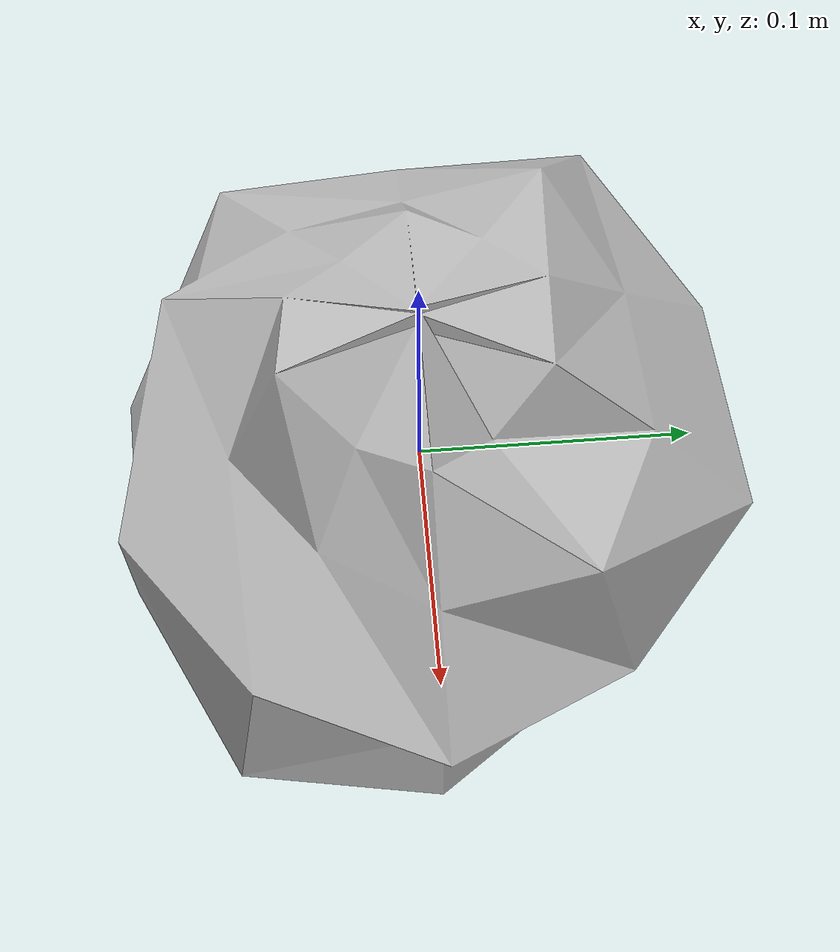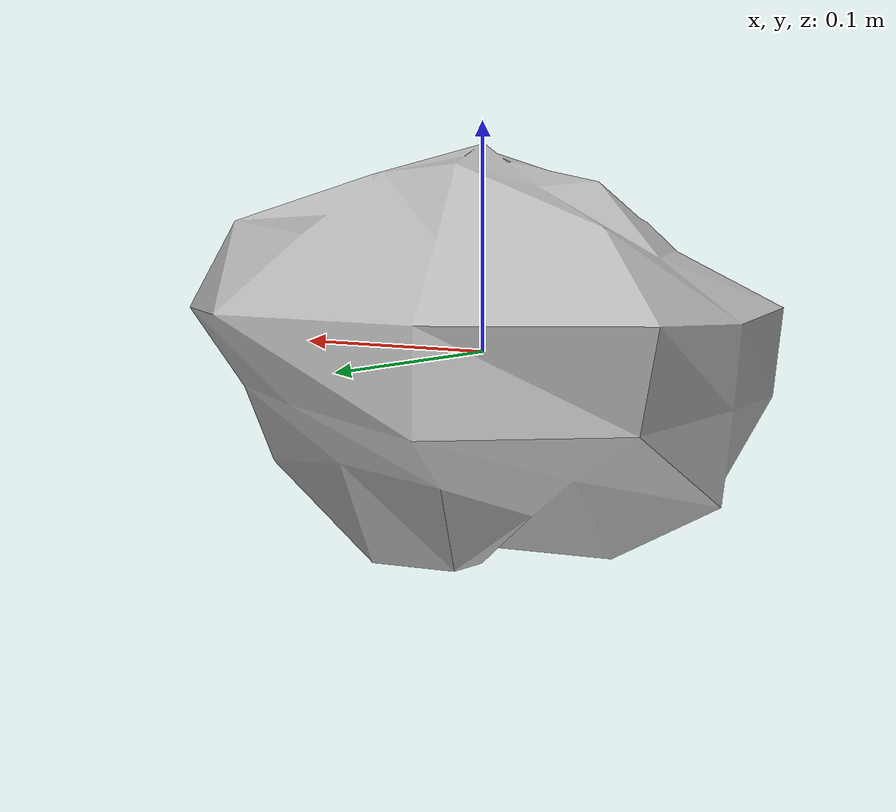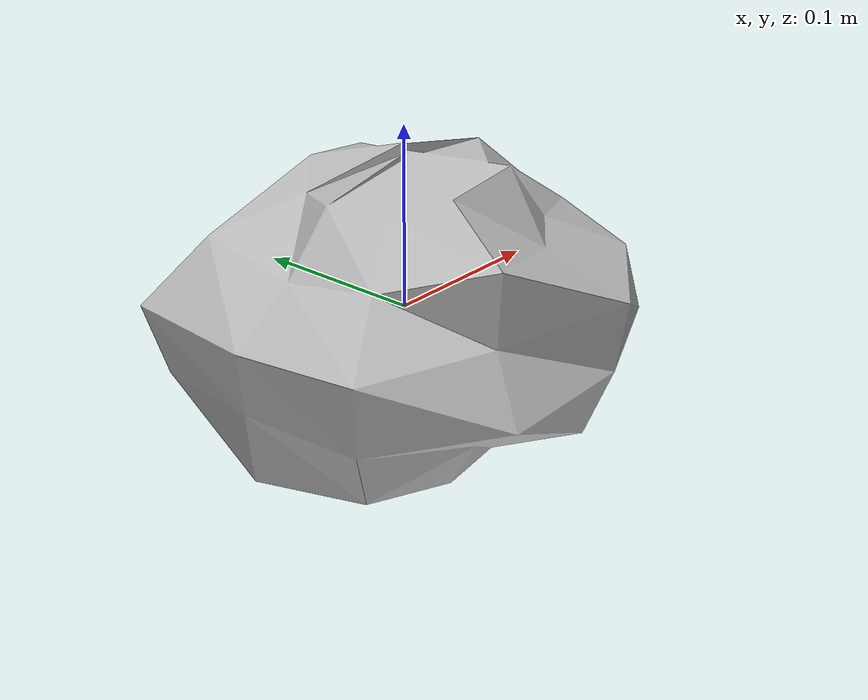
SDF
<?xml version="1.0" ?>
<sdf version="1.9">
  <model name="rock_small">
    <link name="l">
      <inertial><mass>5</mass><inertia><ixx>0.0403</ixx><ixy>0</ixy><ixz>0</ixz><iyy>0.0403</iyy>
        <iyz>0</iyz><izz>0.0403</izz></inertia></inertial>
      <collision name="c"><geometry><box><size>0.231 0.187 0.143</size></box>
        </geometry><surface><contact><collide_bitmask>0x02</collide_bitmask></contact></surface></collision>
      <visual name="v"><geometry><mesh><uri>model://lm_rock/meshes/rock.obj</uri>
        <scale>0.55 0.55 0.55</scale></mesh></geometry></visual>
    </link>
  </model>
</sdf>
